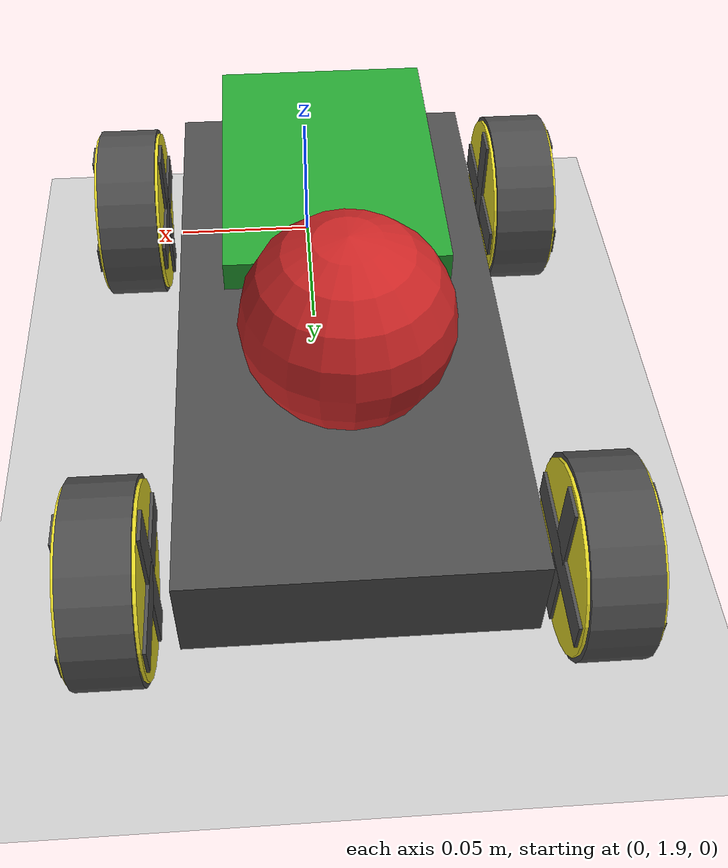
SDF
<sdf version="1.7">
 <world name="trial_1_world">
  <physics name="default_physics" default="0" type="ode">
   <max_step_size>0.004</max_step_size>
   <real_time_factor>1</real_time_factor>
   <real_time_update_rate>250</real_time_update_rate>
  </physics>
  <scene>
   <sky><clouds><speed>12</speed></clouds></sky>
   <ambient>0.4 0.4 0.4 1</ambient>
   <background>0.7 0.7 0.7 1</background>
   <shadows>1</shadows>
  </scene>
  <model name="rover">
   <pose>-0.005936 2.0015 0.040005 -0.000368 7e-05 1.57034</pose>
   <link name="base_link">
    <inertial>
     <mass>0.2</mass>
     <inertia><ixx>0.01</ixx><iyy>0.01</iyy><izz>0.01</izz><ixy>0</ixy><ixz>0</ixz><iyz>0</iyz></inertia>
    </inertial>
    <visual name="chassis_visual">
     <geometry><box><size>0.2 0.1 0.03</size></box></geometry>
     <material>
      <script><uri>file://media/materials/scripts/gazebo.material</uri><name>Gazebo/DarkGrey</name></script>
     </material>
    </visual>
    <collision name="chassis_collision"><geometry><box><size>0.2 0.1 0.03</size></box></geometry></collision>
    <visual name="computer_visual">
     <pose>-0.05 0 0.03 0 -0 0</pose>
     <geometry><box><size>0.1 0.07 0.01</size></box></geometry>
     <material>
      <script><uri>file://media/materials/scripts/gazebo.material</uri><name>Gazebo/Green</name></script>
     </material>
    </visual>
    <collision name="computer_collision">
     <pose>-0.05 0 0.03 0 -0 0</pose>
     <geometry><box><size>0.1 0.07 0.01</size></box></geometry>
    </collision>
   </link>
   <link name="front_left">
    <pose>0.08 0.07 -0.01 -1.5707 0 0</pose>
    <inertial>
     <mass>0.005</mass>
     <inertia><ixx>0.0001</ixx><iyy>0.0001</iyy><izz>0.0001</izz><ixy>0</ixy><ixz>0</ixz><iyz>0</iyz></inertia>
    </inertial>
    <collision name="collision">
     <geometry><cylinder><radius>0.03</radius><length>0.02</length></cylinder></geometry>
    </collision>
    <visual name="tire">
     <geometry><cylinder><radius>0.03</radius><length>0.02</length></cylinder></geometry>
     <material>
      <script><uri>file://media/materials/scripts/gazebo.material</uri><name>Gazebo/DarkGrey</name></script>
     </material>
    </visual>
    <visual name="wheel">
     <geometry><cylinder><radius>0.0285</radius><length>0.022</length></cylinder></geometry>
     <material>
      <script><uri>file://media/materials/scripts/gazebo.material</uri><name>Gazebo/Yellow</name></script>
     </material>
    </visual>
    <visual name="wheel_line">
     <geometry><box><size>0.053 0.01 0.024</size></box></geometry>
     <material>
      <script><uri>file://media/materials/scripts/gazebo.material</uri><name>Gazebo/DarkGrey</name></script>
     </material>
    </visual>
    <visual name="wheel_line2">
     <geometry><box><size>0.01 0.053 0.024</size></box></geometry>
     <material>
      <script><uri>file://media/materials/scripts/gazebo.material</uri><name>Gazebo/DarkGrey</name></script>
     </material>
    </visual>
   </link>
   <joint name="front_left_joint" type="revolute">
    <child>front_left</child>
    <parent>base_link</parent>
    <axis>
     <xyz>0 0 1</xyz>
     <dynamics>
      <friction>0.01</friction>
      <damping>0.01</damping>
      <spring_reference>0</spring_reference>
      <spring_stiffness>0</spring_stiffness>
     </dynamics>
     <limit><lower>-1e+16</lower><upper>1e+16</upper></limit>
    </axis>
   </joint>
   <link name="front_right">
    <pose>0.08 -0.07 -0.01 -1.5707 0 0</pose>
    <inertial>
     <mass>0.005</mass>
     <inertia><ixx>0.0001</ixx><iyy>0.0001</iyy><izz>0.0001</izz><ixy>0</ixy><ixz>0</ixz><iyz>0</iyz></inertia>
    </inertial>
    <collision name="collision">
     <geometry><cylinder><radius>0.03</radius><length>0.02</length></cylinder></geometry>
    </collision>
    <visual name="tire">
     <geometry><cylinder><radius>0.03</radius><length>0.02</length></cylinder></geometry>
     <material>
      <script><uri>file://media/materials/scripts/gazebo.material</uri><name>Gazebo/DarkGrey</name></script>
     </material>
    </visual>
    <visual name="wheel">
     <geometry><cylinder><radius>0.0285</radius><length>0.022</length></cylinder></geometry>
     <material>
      <script><uri>file://media/materials/scripts/gazebo.material</uri><name>Gazebo/Yellow</name></script>
     </material>
    </visual>
    <visual name="wheel_line">
     <geometry><box><size>0.053 0.01 0.024</size></box></geometry>
     <material>
      <script><uri>file://media/materials/scripts/gazebo.material</uri><name>Gazebo/DarkGrey</name></script>
     </material>
    </visual>
    <visual name="wheel_line2">
     <geometry><box><size>0.01 0.053 0.024</size></box></geometry>
     <material>
      <script><uri>file://media/materials/scripts/gazebo.material</uri><name>Gazebo/DarkGrey</name></script>
     </material>
    </visual>
   </link>
   <joint name="front_right_joint" type="revolute">
    <child>front_right</child>
    <parent>base_link</parent>
    <axis>
     <xyz>0 0 1</xyz>
     <dynamics>
      <friction>0.01</friction>
      <damping>0.01</damping>
      <spring_reference>0</spring_reference>
      <spring_stiffness>0</spring_stiffness>
     </dynamics>
     <limit><lower>-1e+16</lower><upper>1e+16</upper></limit>
    </axis>
   </joint>
   <link name="rear_left">
    <pose>-0.08 0.07 -0.01 -1.5707 0 0</pose>
    <inertial>
     <mass>0.005</mass>
     <inertia><ixx>0.0001</ixx><iyy>0.0001</iyy><izz>0.0001</izz><ixy>0</ixy><ixz>0</ixz><iyz>0</iyz></inertia>
    </inertial>
    <collision name="collision">
     <geometry><cylinder><radius>0.03</radius><length>0.02</length></cylinder></geometry>
    </collision>
    <visual name="tire">
     <geometry><cylinder><radius>0.03</radius><length>0.02</length></cylinder></geometry>
     <material>
      <script><uri>file://media/materials/scripts/gazebo.material</uri><name>Gazebo/DarkGrey</name></script>
     </material>
    </visual>
    <visual name="wheel">
     <geometry><cylinder><radius>0.0285</radius><length>0.022</length></cylinder></geometry>
     <material>
      <script><uri>file://media/materials/scripts/gazebo.material</uri><name>Gazebo/Yellow</name></script>
     </material>
    </visual>
    <visual name="wheel_line">
     <geometry><box><size>0.053 0.01 0.024</size></box></geometry>
     <material>
      <script><uri>file://media/materials/scripts/gazebo.material</uri><name>Gazebo/DarkGrey</name></script>
     </material>
    </visual>
    <visual name="wheel_line2">
     <geometry><box><size>0.01 0.053 0.024</size></box></geometry>
     <material>
      <script><uri>file://media/materials/scripts/gazebo.material</uri><name>Gazebo/DarkGrey</name></script>
     </material>
    </visual>
   </link>
   <joint name="rear_left_joint" type="revolute">
    <child>rear_left</child>
    <parent>base_link</parent>
    <axis>
     <xyz>0 0 1</xyz>
     <dynamics>
      <friction>0.01</friction>
      <damping>0.01</damping>
      <spring_reference>0</spring_reference>
      <spring_stiffness>0</spring_stiffness>
     </dynamics>
     <limit><lower>-1e+16</lower><upper>1e+16</upper></limit>
    </axis>
   </joint>
   <link name="rear_right">
    <pose>-0.08 -0.07 -0.01 -1.5707 0 0</pose>
    <inertial>
     <mass>0.005</mass>
     <inertia><ixx>0.0001</ixx><iyy>0.0001</iyy><izz>0.0001</izz><ixy>0</ixy><ixz>0</ixz><iyz>0</iyz></inertia>
    </inertial>
    <collision name="collision">
     <geometry><cylinder><radius>0.03</radius><length>0.02</length></cylinder></geometry>
    </collision>
    <visual name="tire">
     <geometry><cylinder><radius>0.03</radius><length>0.02</length></cylinder></geometry>
     <material>
      <script><uri>file://media/materials/scripts/gazebo.material</uri><name>Gazebo/DarkGrey</name></script>
     </material>
    </visual>
    <visual name="wheel">
     <geometry><cylinder><radius>0.0285</radius><length>0.022</length></cylinder></geometry>
     <material>
      <script><uri>file://media/materials/scripts/gazebo.material</uri><name>Gazebo/Yellow</name></script>
     </material>
    </visual>
    <visual name="wheel_line">
     <geometry><box><size>0.053 0.01 0.024</size></box></geometry>
     <material>
      <script><uri>file://media/materials/scripts/gazebo.material</uri><name>Gazebo/DarkGrey</name></script>
     </material>
    </visual>
    <visual name="wheel_line2">
     <geometry><box><size>0.01 0.053 0.024</size></box></geometry>
     <material>
      <script><uri>file://media/materials/scripts/gazebo.material</uri><name>Gazebo/DarkGrey</name></script>
     </material>
    </visual>
   </link>
   <joint name="rear_right_joint" type="revolute">
    <child>rear_right</child>
    <parent>base_link</parent>
    <axis>
     <xyz>0 0 1</xyz>
     <dynamics>
      <friction>0.01</friction>
      <damping>0.01</damping>
      <spring_reference>0</spring_reference>
      <spring_stiffness>0</spring_stiffness>
     </dynamics>
     <limit><lower>-1e+16</lower><upper>1e+16</upper></limit>
    </axis>
   </joint>
   <frame name="red_ball::__model__" attached_to="red_ball::link">
    <pose relative_to="__model__">0 0 0 0 -0 0</pose>
   </frame>
   <link name="red_ball::link">
    <pose relative_to="red_ball::__model__">0.04 0 0.05 0 -0 0</pose>
    <inertial>
     <mass>0.001</mass>
     <inertia><ixx>0.0001</ixx><iyy>0.0001</iyy><izz>0.0001</izz><ixy>0</ixy><ixz>0</ixz><iyz>0</iyz></inertia>
    </inertial>
    <visual name="ball_visual">
     <geometry><sphere><radius>0.03</radius></sphere></geometry>
     <material>
      <script><uri>file://media/materials/scripts/gazebo.material</uri><name>Gazebo/Red</name></script>
     </material>
    </visual>
    <collision name="ball_collision"><geometry><sphere><radius>0.03</radius></sphere></geometry></collision>
   </link>
   <joint name="red_ball_joint" type="fixed">
    <pose>-0.04 0 0.02 0 -0 0</pose>
    <child>red_ball::link</child>
    <parent>base_link</parent>
   </joint>
   <plugin name="p3d" filename="libgazebo_ros_p3d.so">
    <robotNamespace>rover</robotNamespace>
    <updateRate>10</updateRate>
    <bodyName>base_link</bodyName>
    <topicName>/qualisys/rover/odom</topicName>
    <frameName>map</frameName>
    <xyzOffset>0 0 0</xyzOffset>
    <rpyOffset>0 0 0</rpyOffset>
   </plugin>
   <plugin name="skid_steer_drive_controller" filename="libgazebo_ros_skid_steer_drive.so">
    <robotNamespace>rover</robotNamespace>
    <updateRate>100.0</updateRate>
    <leftFrontJoint>front_left_joint</leftFrontJoint>
    <rightFrontJoint>front_right_joint</rightFrontJoint>
    <leftRearJoint>rear_left_joint</leftRearJoint>
    <rightRearJoint>rear_right_joint</rightRearJoint>
    <wheelSeparation>0.14</wheelSeparation>
    <wheelDiameter>0.06</wheelDiameter>
    <robotBaseFrame>rover_ground_truth</robotBaseFrame>
    <torque>0.3</torque>
    <broadcastTF>0</broadcastTF>
    <commandTopic>cmd_vel</commandTopic>
    <odometryTopic>odom</odometryTopic>
    <odometryFrame>map</odometryFrame>
    <covariance_x>0.0001</covariance_x>
    <covariance_y>0.0001</covariance_y>
    <covariance_yaw>0.0001</covariance_yaw>
   </plugin>
  </model>
  <light name="sun" type="directional">
   <pose>0 0 10 0 -0 0</pose>
   <diffuse>0.8 0.8 0.8 1</diffuse>
   <specular>0.2 0.2 0.2 1</specular>
   <attenuation>
    <range>1000</range>
    <constant>0.9</constant>
    <linear>0.01</linear>
    <quadratic>0.001</quadratic>
   </attenuation>
   <direction>-0.5 0.1 -0.9</direction>
   <spot><inner_angle>0</inner_angle><outer_angle>0</outer_angle><falloff>0</falloff></spot>
  </light>
  <model name="hangar_floor">
   <pose>0 8 0 0 -0 0</pose>
   <static>1</static>
   <link name="link">
    <visual name="visual">
     <geometry><plane><size>20 20</size><normal>0 0 1</normal></plane></geometry>
     <material>
      <script>
       <uri>model://hangar_floor/materials/scripts</uri>
       <uri>model://hangar_floor/materials/textures</uri>
       <name>hangar_floor</name>
      </script>
     </material>
    </visual>
    <collision name="collision">
     <geometry><plane><size>20 20</size><normal>0 0 1</normal></plane></geometry>
    </collision>
   </link>
  </model>
  <gravity>0 0 -9.8</gravity>
  <magnetic_field>6e-06 2.3e-05 -4.2e-05</magnetic_field>
  <atmosphere type="adiabatic"/>
  <spherical_coordinates>
   <surface_model>EARTH_WGS84</surface_model>
   <latitude_deg>0</latitude_deg>
   <longitude_deg>0</longitude_deg>
   <elevation>0</elevation>
   <heading_deg>0</heading_deg>
  </spherical_coordinates>
 </world>
</sdf>
